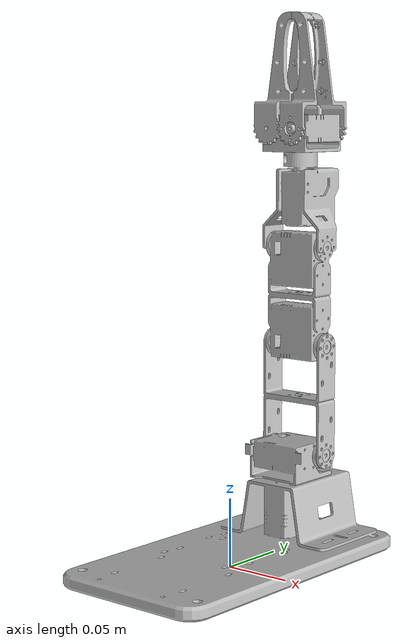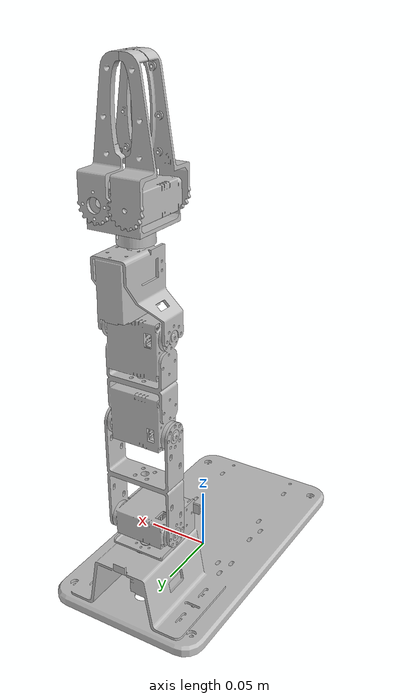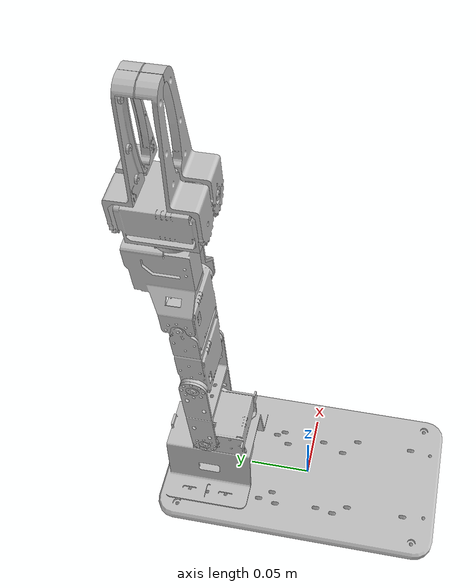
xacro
<?xml version="1.0"?>
<robot xmlns:xacro="http://www.ros.org/wiki/xacro" name="robo_description">
    <xacro:arg name="initial_positions_file" default="initial_positions.yaml" />

    <!-- Import robo_description urdf file -->
    <xacro:include filename="$(find robo_description)/urdf/robot_description.urdf" />

    <!-- Import control_xacro -->
    <xacro:include filename="robo_description.ros2_control.xacro" />

    <xacro:robo_description_ros2_control name="FakeSystem" initial_positions_file="$(arg initial_positions_file)"/>

</robot>

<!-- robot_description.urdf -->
<robot
  name="robo_description">
  <link
    name="base_link">
    <visual>
      <origin
        xyz="0 0 0"
        rpy="0 0 0" />
      <geometry>
        <mesh
          filename="package://robo_description/meshes/visual/base_link.STL" />
      </geometry>
      <material
        name="">
        <color
          rgba="0.752941176470588 0.752941176470588 0.752941176470588 1" />
      </material>
    </visual>
    <collision>
      <origin
        xyz="0 0 0"
        rpy="0 0 0" />
      <geometry>
        <mesh
          filename="package://robo_description/meshes/visual/base_link.STL" />
      </geometry>
    </collision>
  </link>
  <link
    name="robot_link1">
    <visual>
      <origin
        xyz="0 0 0"
        rpy="0 0 0" />
      <geometry>
        <mesh
          filename="package://robo_description/meshes/visual/robot_link1.STL" />
      </geometry>
      <material
        name="">
        <color
          rgba="0.752941176470588 0.752941176470588 0.752941176470588 1" />
      </material>
    </visual>
    <collision>
      <origin
        xyz="0 0 0"
        rpy="0 0 0" />
      <geometry>
        <mesh
          filename="package://robo_description/meshes/visual/robot_link1.STL" />
      </geometry>
    </collision>
  </link>
  <joint
    name="robot_joint1"
    type="revolute">
    <origin
      xyz="-4.10730256436539E-05 0.0800931563628078 0.0537499999998397"
      rpy="0 0 0" />
    <parent
      link="base_link" />
    <child
      link="robot_link1" />
    <axis
      xyz="0 0 1" />
    <limit
      lower="-3.1"
      upper="3.1"
      effort="30"
      velocity="50.000001" />
  </joint>
  <link
    name="robot_link2">
    <visual>
      <origin
        xyz="0 0 0"
        rpy="0 0 0" />
      <geometry>
        <mesh
          filename="package://robo_description/meshes/visual/robot_link2.STL" />
      </geometry>
      <material
        name="">
        <color
          rgba="0.752941176470588 0.752941176470588 0.752941176470588 1" />
      </material>
    </visual>
    <collision>
      <origin
        xyz="0 0 0"
        rpy="0 0 0" />
      <geometry>
        <mesh
          filename="package://robo_description/meshes/visual/robot_link2.STL" />
      </geometry>
    </collision>
  </link>
  <joint
    name="robot_joint2"
    type="revolute">
    <origin
      xyz="0.00019999999985654 -0.000803554524565649 0.0178874681170878"
      rpy="-1.57107697491636 0 1.5702615513509" />
    <parent
      link="robot_link1" />
    <child
      link="robot_link2" />
    <axis
      xyz="0 0 1" />
    <limit
      lower="-3.1"
      upper="3.1"
      effort="30"
      velocity="50.000001" />
  </joint>
  <link
    name="robot_link3">
    <visual>
      <origin
        xyz="0 0 0"
        rpy="0 0 0" />
      <geometry>
        <mesh
          filename="package://robo_description/meshes/visual/robot_link3.STL" />
      </geometry>
      <material
        name="">
        <color
          rgba="0.752941176470588 0.752941176470588 0.752941176470588 1" />
      </material>
    </visual>
    <collision>
      <origin
        xyz="0 0 0"
        rpy="0 0 0" />
      <geometry>
        <mesh
          filename="package://robo_description/meshes/visual/robot_link3.STL" />
      </geometry>
    </collision>
  </link>
  <joint
    name="robot_joint3"
    type="revolute">
    <origin
      xyz="-1.28346100440498E-05 -0.0814055936788621 -2.28531912174905E-05"
      rpy="0.000280648161581886 -0.000534775422932215 0" />
    <parent
      link="robot_link2" />
    <child
      link="robot_link3" />
    <axis
      xyz="0 0 1" />
    <limit
      lower="-3.1"
      upper="3.1"
      effort="30"
      velocity="50.000001" />
  </joint>
  <link
    name="robot_link4">
    <visual>
      <origin
        xyz="0 0 0"
        rpy="0 0 0" />
      <geometry>
        <mesh
          filename="package://robo_description/meshes/visual/robot_link4.STL" />
      </geometry>
      <material
        name="">
        <color
          rgba="0.752941176470588 0.752941176470588 0.752941176470588 1" />
      </material>
    </visual>
    <collision>
      <origin
        xyz="0 0 0"
        rpy="0 0 0" />
      <geometry>
        <mesh
          filename="package://robo_description/meshes/visual/robot_link4.STL" />
      </geometry>
    </collision>
  </link>
  <joint
    name="robot_joint4"
    type="revolute">
    <origin
      xyz="0 -0.07335 0.00045"
      rpy="0 0 0" />
    <parent
      link="robot_link3" />
    <child
      link="robot_link4" />
    <axis
      xyz="0 0 1" />
    <limit
      lower="-3.1"
      upper="3.1"
      effort="30"
      velocity="50.000001" />
  </joint>
  <link
    name="hand_link">
    <visual>
      <origin
        xyz="0 0 0"
        rpy="0 0 0" />
      <geometry>
        <mesh
          filename="package://robo_description/meshes/visual/hand_link.STL" />
      </geometry>
      <material
        name="">
        <color
          rgba="0.752941176470588 0.752941176470588 0.752941176470588 1" />
      </material>
    </visual>
    <collision>
      <origin
        xyz="0 0 0"
        rpy="0 0 0" />
      <geometry>
        <mesh
          filename="package://robo_description/meshes/visual/hand_link.STL" />
      </geometry>
    </collision>
  </link>
  <joint
    name="hand_joint"
    type="revolute">
    <origin
      xyz="0.001325 -0.17024 0"
      rpy="1.5708 1.5708 0" />
    <parent
      link="robot_link4" />
    <child
      link="hand_link" />
    <axis
      xyz="0 0 -1" />
    <limit
      lower="-3.1"
      upper="3.1"
      effort="30"
      velocity="50.000001" />
  </joint>
  <link
    name="left_link">
    <visual>
      <origin
        xyz="0 0 0"
        rpy="0 0 0" />
      <geometry>
        <mesh
          filename="package://robo_description/meshes/visual/left_link.STL" />
      </geometry>
      <material
        name="">
        <color
          rgba="0.752941176470588 0.752941176470588 0.752941176470588 1" />
      </material>
    </visual>
    <collision>
      <origin
        xyz="0 0 0"
        rpy="0 0 0" />
      <geometry>
        <mesh
          filename="package://robo_description/meshes/visual/left_link.STL" />
      </geometry>
    </collision>
  </link>
  <joint
    name="left_joint"
    type="revolute">
    <origin
      xyz="0.0105 0 -0.083439"
      rpy="1.5708 0 0" />
    <parent
      link="hand_link" />
    <child
      link="left_link" />
    <axis
      xyz="0 0 1" />
    <limit
      lower="-3.1"
      upper="3.1"
      effort="30"
      velocity="50.000001" />
  </joint>
  <link
    name="right_link">
    <visual>
      <origin
        xyz="0 0 0"
        rpy="0 0 0" />
      <geometry>
        <mesh
          filename="package://robo_description/meshes/visual/right_link.STL" />
      </geometry>
      <material
        name="">
        <color
          rgba="0.752941176470588 0.752941176470588 0.752941176470588 1" />
      </material>
    </visual>
    <collision>
      <origin
        xyz="0 0 0"
        rpy="0 0 0" />
      <geometry>
        <mesh
          filename="package://robo_description/meshes/visual/right_link.STL" />
      </geometry>
    </collision>
  </link>
  <joint
    name="right_joint"
    type="revolute">
    <origin
      xyz="-0.0115 0 -0.083439"
      rpy="-1.5708 0 3.1416" />
    <parent
      link="hand_link" />
    <child
      link="right_link" />
    <axis
      xyz="0 0 -1" />
    <limit
      lower="-3.1"
      upper="3.1"
      effort="30"
      velocity="50.000001" />
    <mimic joint="left_joint" />
  </joint>
</robot>
